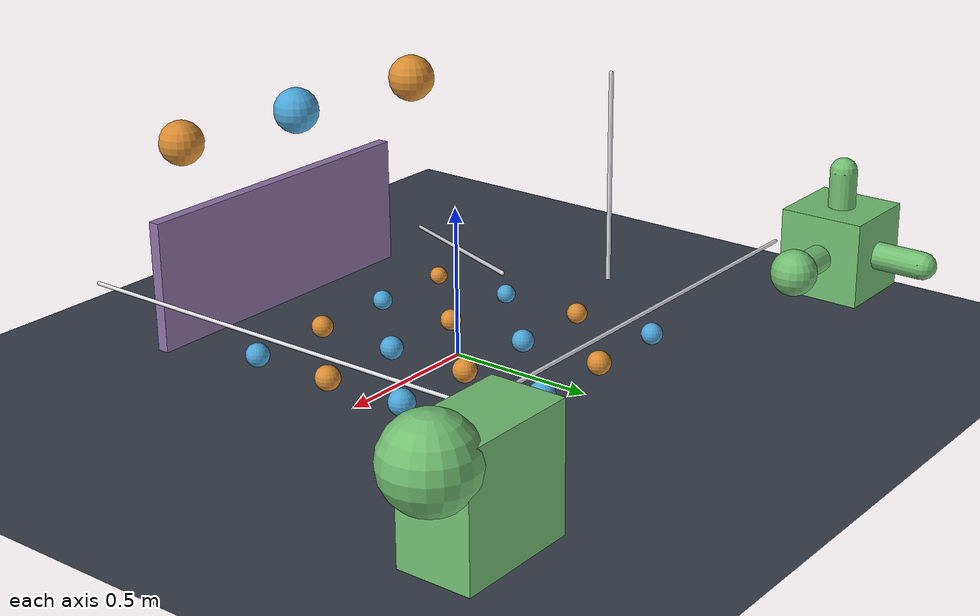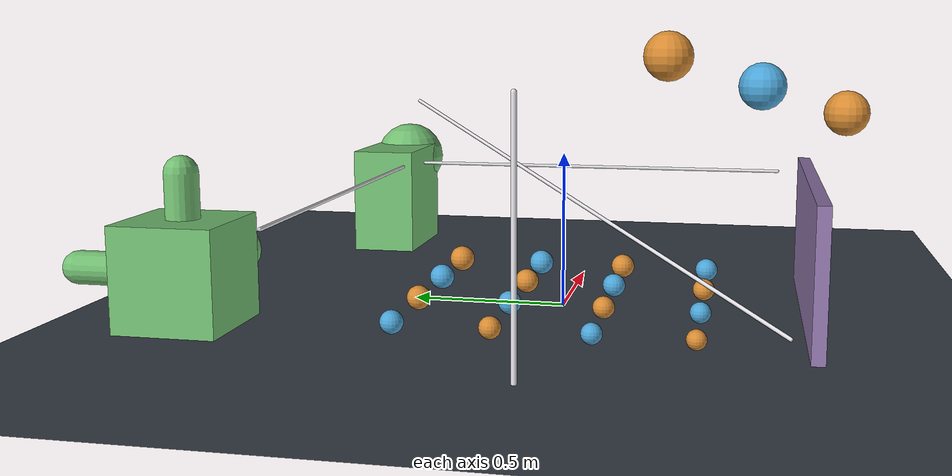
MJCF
<mujoco model="pick_scene">
  <compiler angle="degree" autolimits="true"/>

  <visual>
    <headlight ambient="0.28 0.28 0.28" diffuse="0.45 0.45 0.45" specular="0.4 0.4 0.4"/>
    <quality shadowsize="2048" numslices="28" numstacks="16"/>
    <map znear="0.01" zfar="30"/>
  </visual>

  <asset>
    <texture name="grid" type="2d" builtin="checker" width="512" height="512"
             rgb1="0.17 0.19 0.23" rgb2="0.27 0.30 0.35"/>
    <material name="grid" texture="grid" texrepeat="1 1" texuniform="true"/>
    <material name="ball" rgba="0.85 0.55 0.20 1" specular="0.6" shininess="0.7"/>
    <material name="ball_alt" rgba="0.30 0.65 0.85 1" specular="0.6" shininess="0.7"/>
    <material name="rod" rgba="0.88 0.88 0.90 1" specular="0.8" shininess="0.9"/>
    <material name="cluster" rgba="0.45 0.75 0.45 1" specular="0.3" shininess="0.4"/>
    <material name="slab" rgba="0.55 0.45 0.65 1" specular="0.2" shininess="0.3"/>
  </asset>

  <worldbody>
    <light name="sun" type="directional" pos="1.5 -2 4" dir="-0.3 0.4 -1"
           diffuse="0.65 0.65 0.65" specular="0.25 0.25 0.25" castshadow="true"/>

    <geom name="floor" type="plane" size="0 0 0.05" material="grid"/>

    <body name="ball_00" pos="-0.45 -0.45 0.030">
      <geom name="ball_00" type="sphere" size="0.030" material="ball"/>
    </body>
    <body name="ball_01" pos="-0.15 -0.45 0.033">
      <geom name="ball_01" type="sphere" size="0.033" material="ball_alt"/>
    </body>
    <body name="ball_02" pos="0.15 -0.45 0.036">
      <geom name="ball_02" type="sphere" size="0.036" material="ball"/>
    </body>
    <body name="ball_03" pos="0.45 -0.45 0.039">
      <geom name="ball_03" type="sphere" size="0.039" material="ball_alt"/>
    </body>
    <body name="ball_04" pos="-0.45 -0.15 0.032">
      <geom name="ball_04" type="sphere" size="0.032" material="ball_alt"/>
    </body>
    <body name="ball_05" pos="-0.15 -0.15 0.035">
      <geom name="ball_05" type="sphere" size="0.035" material="ball"/>
    </body>
    <body name="ball_06" pos="0.15 -0.15 0.038">
      <geom name="ball_06" type="sphere" size="0.038" material="ball_alt"/>
    </body>
    <body name="ball_07" pos="0.45 -0.15 0.041">
      <geom name="ball_07" type="sphere" size="0.041" material="ball"/>
    </body>
    <body name="ball_08" pos="-0.45 0.15 0.034">
      <geom name="ball_08" type="sphere" size="0.034" material="ball"/>
    </body>
    <body name="ball_09" pos="-0.15 0.15 0.037">
      <geom name="ball_09" type="sphere" size="0.037" material="ball_alt"/>
    </body>
    <body name="ball_10" pos="0.15 0.15 0.040">
      <geom name="ball_10" type="sphere" size="0.040" material="ball"/>
    </body>
    <body name="ball_11" pos="0.45 0.15 0.043">
      <geom name="ball_11" type="sphere" size="0.043" material="ball_alt"/>
    </body>
    <body name="ball_12" pos="-0.45 0.45 0.036">
      <geom name="ball_12" type="sphere" size="0.036" material="ball_alt"/>
    </body>
    <body name="ball_13" pos="-0.15 0.45 0.039">
      <geom name="ball_13" type="sphere" size="0.039" material="ball"/>
    </body>
    <body name="ball_14" pos="0.15 0.45 0.042">
      <geom name="ball_14" type="sphere" size="0.042" material="ball_alt"/>
    </body>
    <body name="ball_15" pos="0.45 0.45 0.045">
      <geom name="ball_15" type="sphere" size="0.045" material="ball"/>
    </body>

    <body name="rod_x">
      <geom name="rod_x" type="capsule" fromto="-0.7 0.75 0.35 0.7 0.75 0.35" size="0.006"
            material="rod"/>
    </body>
    <body name="rod_y">
      <geom name="rod_y" type="capsule" fromto="0.85 -0.7 0.35 0.85 0.7 0.35" size="0.006"
            material="rod"/>
    </body>
    <body name="rod_diag">
      <geom name="rod_diag" type="capsule" fromto="-0.65 -0.7 0.10 0.60 0.65 0.62" size="0.006"
            material="rod"/>
    </body>
    <body name="rod_up">
      <geom name="rod_up" type="capsule" fromto="-0.85 0.0 0.0 -0.85 0.0 0.75" size="0.008"
            material="rod"/>
    </body>

    <body name="stack_near" pos="0.30 -0.90 0.62">
      <geom name="stack_near" type="sphere" size="0.075" material="ball"/>
    </body>
    <body name="stack_mid" pos="0.05 -0.62 0.72">
      <geom name="stack_mid" type="sphere" size="0.075" material="ball_alt"/>
    </body>
    <body name="stack_far" pos="-0.20 -0.34 0.82">
      <geom name="stack_far" type="sphere" size="0.075" material="ball"/>
    </body>

    <body name="slab" pos="0.0 -0.78 0.22">
      <geom name="slab" type="box" size="0.55 0.02 0.22" material="slab"/>
    </body>

    <body name="pair" pos="0.95 0.85 0.20">
      <geom name="pair_a" type="box" size="0.20 0.12 0.20" material="cluster"/>
      <geom name="pair_b" type="sphere" pos="0.20 0 0.14" size="0.14" material="cluster"/>
    </body>

    <body name="cluster" pos="-0.95 0.85 0.28">
      <geom name="cluster_core" type="box" size="0.14 0.14 0.14" material="cluster"/>
      <geom name="cluster_arm_x" type="capsule" fromto="0 0 0 0.30 0 0" size="0.045"
            material="cluster"/>
      <geom name="cluster_arm_y" type="capsule" fromto="0 0 0 0 0.30 0" size="0.045"
            material="cluster"/>
      <geom name="cluster_arm_z" type="capsule" fromto="0 0 0 0 0 0.26" size="0.045"
            material="cluster"/>
      <geom name="cluster_tip" type="sphere" pos="0.30 0 0" size="0.075" material="cluster"/>
    </body>

    <camera name="pick" pos="1.35 -1.65 1.05" xyaxes="0.77 0.64 0 -0.28 0.34 0.90"/>
  </worldbody>
</mujoco>
